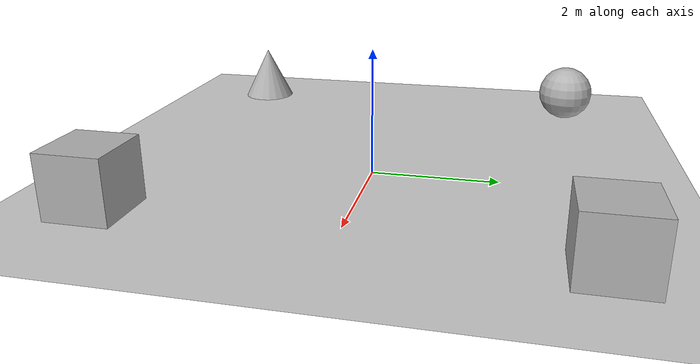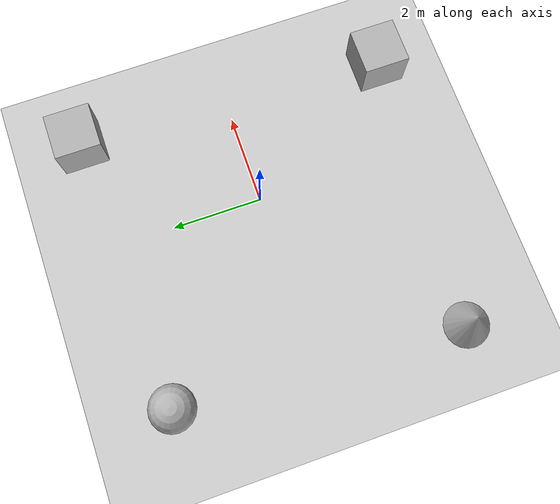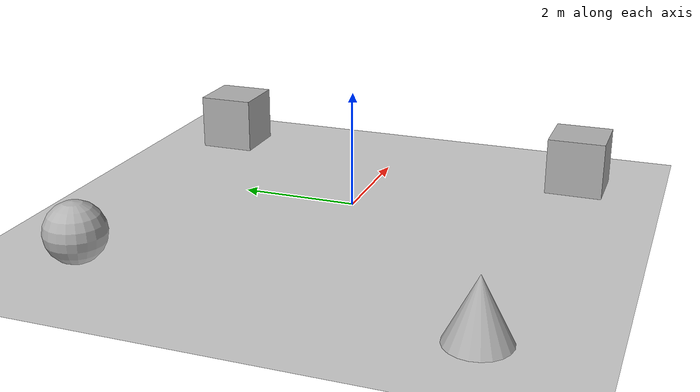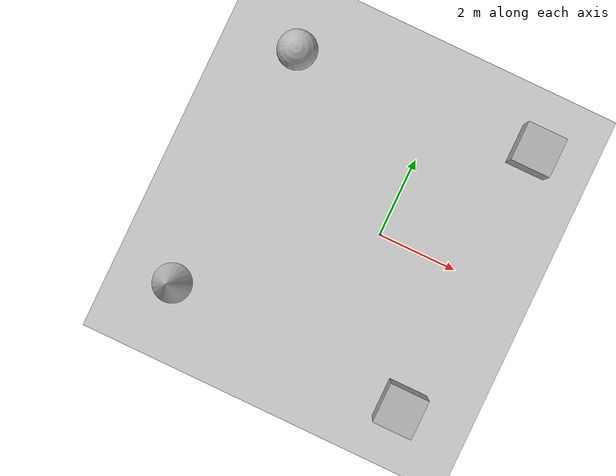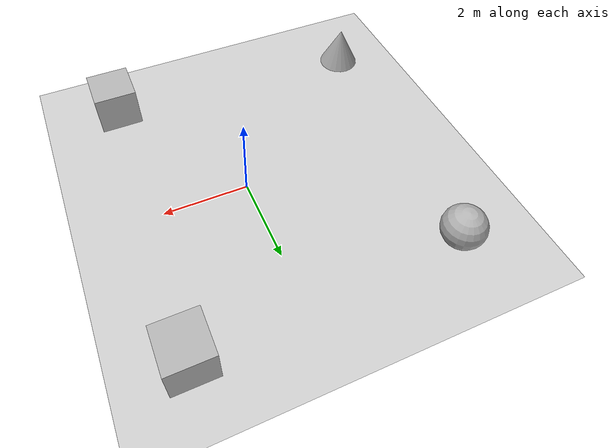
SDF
<sdf version='1.10'>
  <world name='empty'>
    <physics name='1ms' type='ignored'>
      <max_step_size>0.001</max_step_size>
      <real_time_factor>1</real_time_factor>
      <real_time_update_rate>1000</real_time_update_rate>
    </physics>
    <plugin name='gz::sim::systems::Physics' filename='gz-sim-physics-system'/>
    <plugin name='gz::sim::systems::UserCommands' filename='gz-sim-user-commands-system'/>
    <plugin name='gz::sim::systems::SceneBroadcaster' filename='gz-sim-scene-broadcaster-system'/>
    <plugin name='gz::sim::systems::Contact' filename='gz-sim-contact-system'/>
    <plugin filename="gz-sim-imu-system" name="gz::sim::systems::Imu"/>
    <plugin
      filename="gz-sim-sensors-system"
      name="gz::sim::systems::Sensors">
      <render_engine>ogre2</render_engine>
    </plugin>

    <gravity>0 0 -9.8000000000000007</gravity>
    <magnetic_field>5.5644999999999998e-06 2.2875799999999999e-05 -4.2388400000000002e-05</magnetic_field>
    <atmosphere type='adiabatic'/>
    <scene>
      <ambient>0.400000006 0.400000006 0.400000006 1</ambient>
      <background>0.699999988 0.699999988 0.699999988 1</background>
      <shadows>true</shadows>
    </scene>
    <model name='ground_plane'>
      <static>true</static>
      <link name='link'>
        <collision name='collision'>
          <geometry>
            <plane>
              <normal>0 0 1</normal>
              <size>100 100</size>
            </plane>
          </geometry>
          <surface>
            <friction>
              <ode/>
            </friction>
            <bounce/>
            <contact/>
          </surface>
        </collision>
        <visual name='visual'>
          <geometry>
            <plane>
              <normal>0 0 1</normal>
              <size>100 100</size>
            </plane>
          </geometry>
          <material>
            <ambient>0.800000012 0.800000012 0.800000012 1</ambient>
            <diffuse>0.800000012 0.800000012 0.800000012 1</diffuse>
            <specular>0.800000012 0.800000012 0.800000012 1</specular>
          </material>
        </visual>
        <pose>0 0 0 0 0 0</pose>
        <inertial>
          <pose>0 0 0 0 0 0</pose>
          <mass>1</mass>
          <inertia>
            <ixx>1</ixx>
            <ixy>0</ixy>
            <ixz>0</ixz>
            <iyy>1</iyy>
            <iyz>0</iyz>
            <izz>1</izz>
          </inertia>
        </inertial>
        <enable_wind>false</enable_wind>
      </link>
      <pose>0 0 0 0 0 0</pose>
      <self_collide>false</self_collide>
    </model>
    <model name='box'>
      <pose>2.4900642754889244 3.3922839525271482 0.5 0 0 0</pose>
      <link name='box_link'>
        <inertial>
          <inertia>
            <ixx>0.16666</ixx>
            <ixy>0</ixy>
            <ixz>0</ixz>
            <iyy>0.16666</iyy>
            <iyz>0</iyz>
            <izz>0.16666</izz>
          </inertia>
          <mass>1</mass>
          <pose>0 0 0 0 0 0</pose>
        </inertial>
        <collision name='box_collision'>
          <geometry>
            <box>
              <size>1 1 1</size>
            </box>
          </geometry>
          <surface>
            <friction>
              <ode/>
            </friction>
            <bounce/>
            <contact/>
          </surface>
        </collision>
        <visual name='box_visual'>
          <geometry>
            <box>
              <size>1 1 1</size>
            </box>
          </geometry>
          <material>
            <ambient>0.300000012 0.300000012 0.300000012 1</ambient>
            <diffuse>0.699999988 0.699999988 0.699999988 1</diffuse>
            <specular>1 1 1 1</specular>
          </material>
        </visual>
        <pose>0 0 0 0 0 0</pose>
        <enable_wind>false</enable_wind>
      </link>
      <static>false</static>
      <self_collide>false</self_collide>
    </model>
    <model name='box_0'>
      <pose>2.1963435184480868 -3.5335566967294438 0.5 0 0 0</pose>
      <link name='box_link'>
        <inertial>
          <inertia>
            <ixx>0.16666</ixx>
            <ixy>0</ixy>
            <ixz>0</ixz>
            <iyy>0.16666</iyy>
            <iyz>0</iyz>
            <izz>0.16666</izz>
          </inertia>
          <mass>1</mass>
          <pose>0 0 0 0 0 0</pose>
        </inertial>
        <collision name='box_collision'>
          <geometry>
            <box>
              <size>1 1 1</size>
            </box>
          </geometry>
          <surface>
            <friction>
              <ode/>
            </friction>
            <bounce/>
            <contact/>
          </surface>
        </collision>
        <visual name='box_visual'>
          <geometry>
            <box>
              <size>1 1 1</size>
            </box>
          </geometry>
          <material>
            <ambient>0.300000012 0.300000012 0.300000012 1</ambient>
            <diffuse>0.699999988 0.699999988 0.699999988 1</diffuse>
            <specular>1 1 1 1</specular>
          </material>
        </visual>
        <pose>0 0 0 0 0 0</pose>
        <enable_wind>false</enable_wind>
      </link>
      <static>false</static>
      <self_collide>false</self_collide>
    </model>
    <model name='sphere'>
      <pose>-3.6848969781706238 3.1338886157700765 0.5 0 0 0</pose>
      <link name='sphere_link'>
        <inertial>
          <inertia>
            <ixx>0.10000000000000001</ixx>
            <ixy>0</ixy>
            <ixz>0</ixz>
            <iyy>0.10000000000000001</iyy>
            <iyz>0</iyz>
            <izz>0.10000000000000001</izz>
          </inertia>
          <mass>1</mass>
          <pose>0 0 0 0 0 0</pose>
        </inertial>
        <collision name='sphere_collision'>
          <geometry>
            <sphere>
              <radius>0.5</radius>
            </sphere>
          </geometry>
          <surface>
            <friction>
              <ode/>
            </friction>
            <bounce/>
            <contact/>
          </surface>
        </collision>
        <visual name='sphere_visual'>
          <geometry>
            <sphere>
              <radius>0.5</radius>
            </sphere>
          </geometry>
          <material>
            <ambient>0.300000012 0.300000012 0.300000012 1</ambient>
            <diffuse>0.699999988 0.699999988 0.699999988 1</diffuse>
            <specular>1 1 1 1</specular>
          </material>
        </visual>
        <pose>0 0 0 0 0 0</pose>
        <enable_wind>false</enable_wind>
      </link>
      <static>false</static>
      <self_collide>false</self_collide>
    </model>
    <model name='cone'>
      <pose>-4.0474362768439134 -3.2140313778379594 0.5 0 0 0</pose>
      <link name='cone_link'>
        <inertial>
          <inertia>
            <ixx>0.074999999999999997</ixx>
            <ixy>0</ixy>
            <ixz>0</ixz>
            <iyy>0.074999999999999997</iyy>
            <iyz>0</iyz>
            <izz>0.074999999999999997</izz>
          </inertia>
          <mass>1</mass>
          <pose>0 0 0 0 0 0</pose>
        </inertial>
        <collision name='cone_collision'>
          <geometry>
            <cone>
              <radius>0.5</radius>
              <length>1</length>
            </cone>
          </geometry>
          <surface>
            <friction>
              <ode/>
            </friction>
            <bounce/>
            <contact/>
          </surface>
        </collision>
        <visual name='cone_visual'>
          <geometry>
            <cone>
              <radius>0.5</radius>
              <length>1</length>
            </cone>
          </geometry>
          <material>
            <ambient>0.300000012 0.300000012 0.300000012 1</ambient>
            <diffuse>0.699999988 0.699999988 0.699999988 1</diffuse>
            <specular>1 1 1 1</specular>
          </material>
        </visual>
        <pose>0 0 0 0 0 0</pose>
        <enable_wind>false</enable_wind>
      </link>
      <static>false</static>
      <self_collide>false</self_collide>
    </model>
    <light name='sun' type='directional'>
      <pose>0 0 10 0 0 0</pose>
      <cast_shadows>true</cast_shadows>
      <intensity>1</intensity>
      <direction>-0.5 0.10000000000000001 -0.90000000000000002</direction>
      <diffuse>0.800000012 0.800000012 0.800000012 1</diffuse>
      <specular>0.200000003 0.200000003 0.200000003 1</specular>
      <attenuation>
        <range>1000</range>
        <linear>0.01</linear>
        <constant>0.90000000000000002</constant>
        <quadratic>0.001</quadratic>
      </attenuation>
      <spot>
        <inner_angle>0</inner_angle>
        <outer_angle>0</outer_angle>
        <falloff>0</falloff>
      </spot>
    </light>
  </world>
</sdf>
